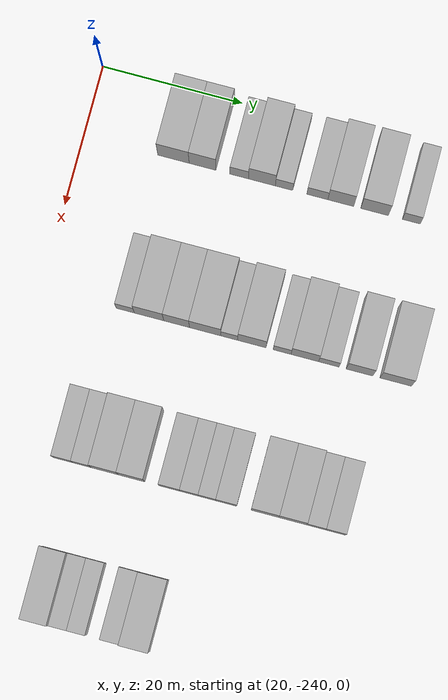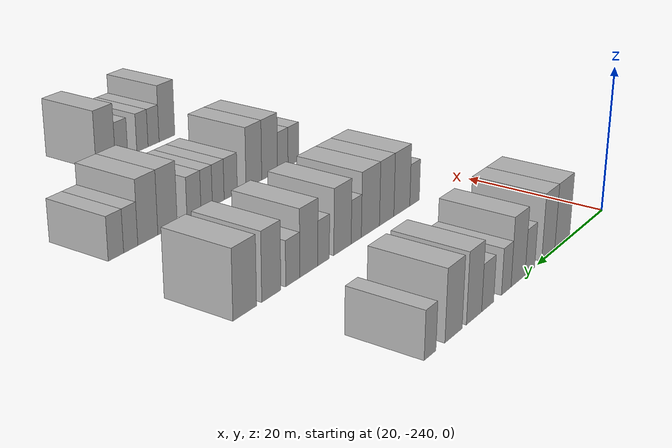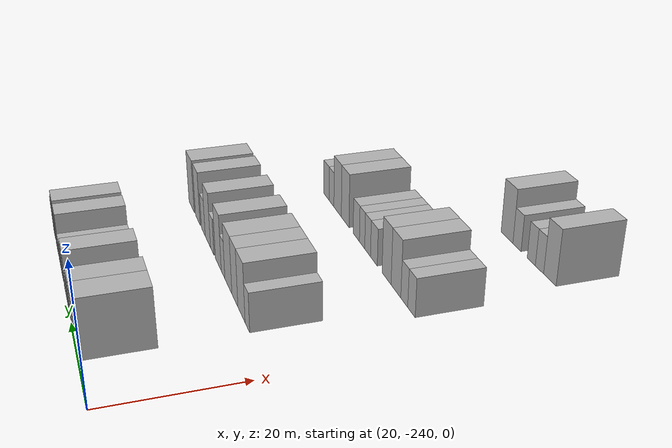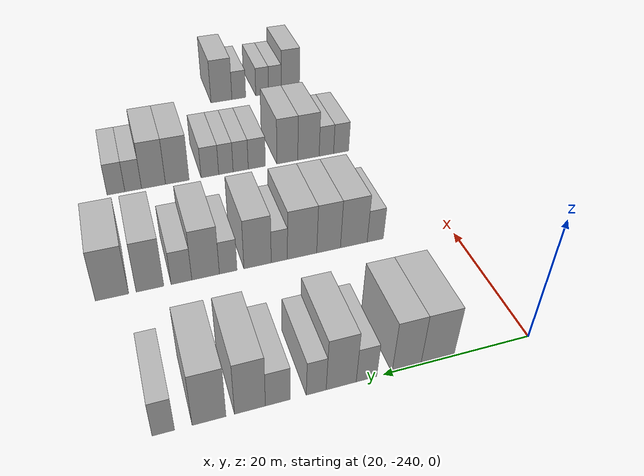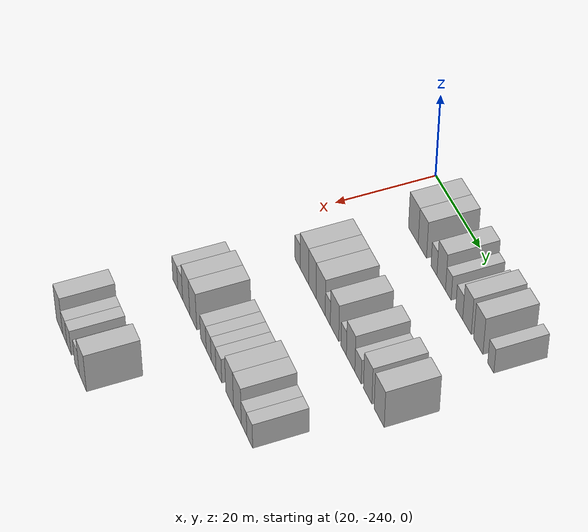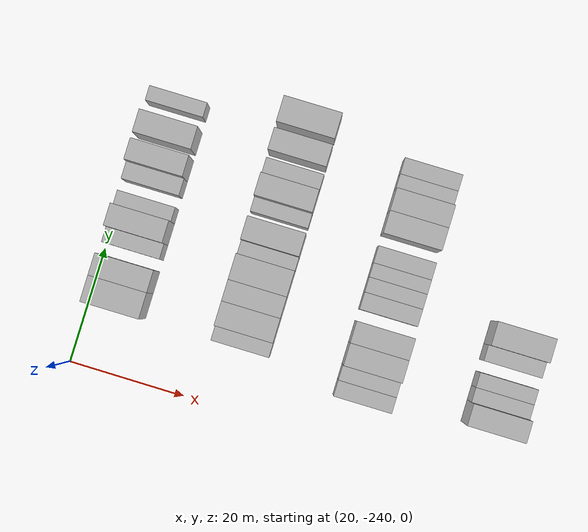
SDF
<sdf version="1.6">
 <world name="default">
  <model name="building_40">
   <static>1</static>
   <pose>25.0000 -227.1683 0 0.000000 0.000000 0.000000</pose>
   <link name="link">
    <pose>0 0 4.50 0 0 0</pose>
    <collision name="collision"><geometry><box><size>10.0000 4.4841 9.0000</size></box></geometry></collision>
    <visual name="visual">
     <cast_shadows>0</cast_shadows>
     <geometry><box><size>10.0000 4.4841 9.0000</size></box></geometry>
     <material>
      <script>
       <uri>model://HANNAS_wall/materials/scripts</uri>
       <uri>model://HANNAS_wall/materials/textures</uri>
       <name>vrc/HANNAS_wall</name>
      </script>
     </material>
    </visual>
   </link>
  </model>
  <model name="building_41">
   <static>1</static>
   <pose>25.0000 -223.0183 0 0.000000 0.000000 0.000000</pose>
   <link name="link">
    <pose>0 0 4.50 0 0 0</pose>
    <collision name="collision"><geometry><box><size>10.0000 3.8158 9.0000</size></box></geometry></collision>
    <visual name="visual">
     <cast_shadows>0</cast_shadows>
     <geometry><box><size>10.0000 3.8158 9.0000</size></box></geometry>
     <material>
      <script>
       <uri>model://HANNAS_wall/materials/scripts</uri>
       <uri>model://HANNAS_wall/materials/textures</uri>
       <name>vrc/HANNAS_wall</name>
      </script>
     </material>
    </visual>
   </link>
  </model>
  <model name="building_42">
   <static>1</static>
   <pose>25.0000 -217.7820 0 0.000000 0.000000 0.000000</pose>
   <link name="link">
    <pose>0 0 3.00 0 0 0</pose>
    <collision name="collision"><geometry><box><size>10.0000 2.6568 6.0000</size></box></geometry></collision>
    <visual name="visual">
     <cast_shadows>0</cast_shadows>
     <geometry><box><size>10.0000 2.6568 6.0000</size></box></geometry>
     <material>
      <script>
       <uri>model://HANNAS_wall/materials/scripts</uri>
       <uri>model://HANNAS_wall/materials/textures</uri>
       <name>vrc/HANNAS_wall</name>
      </script>
     </material>
    </visual>
   </link>
  </model>
  <model name="building_43">
   <static>1</static>
   <pose>25.0000 -214.5450 0 0.000000 0.000000 0.000000</pose>
   <link name="link">
    <pose>0 0 4.50 0 0 0</pose>
    <collision name="collision"><geometry><box><size>10.0000 3.8174 9.0000</size></box></geometry></collision>
    <visual name="visual">
     <cast_shadows>0</cast_shadows>
     <geometry><box><size>10.0000 3.8174 9.0000</size></box></geometry>
     <material>
      <script>
       <uri>model://HANNAS_wall/materials/scripts</uri>
       <uri>model://HANNAS_wall/materials/textures</uri>
       <name>vrc/HANNAS_wall</name>
      </script>
     </material>
    </visual>
   </link>
  </model>
  <model name="building_44">
   <static>1</static>
   <pose>25.0000 -211.3935 0 0.000000 0.000000 0.000000</pose>
   <link name="link">
    <pose>0 0 3.00 0 0 0</pose>
    <collision name="collision"><geometry><box><size>10.0000 2.4856 6.0000</size></box></geometry></collision>
    <visual name="visual">
     <cast_shadows>0</cast_shadows>
     <geometry><box><size>10.0000 2.4856 6.0000</size></box></geometry>
     <material>
      <script>
       <uri>model://HANNAS_wall/materials/scripts</uri>
       <uri>model://HANNAS_wall/materials/textures</uri>
       <name>vrc/HANNAS_wall</name>
      </script>
     </material>
    </visual>
   </link>
  </model>
  <model name="building_45">
   <static>1</static>
   <pose>25.0000 -206.6553 0 0.000000 0.000000 0.000000</pose>
   <link name="link">
    <pose>0 0 3.00 0 0 0</pose>
    <collision name="collision"><geometry><box><size>10.0000 2.9908 6.0000</size></box></geometry></collision>
    <visual name="visual">
     <cast_shadows>0</cast_shadows>
     <geometry><box><size>10.0000 2.9908 6.0000</size></box></geometry>
     <material>
      <script>
       <uri>model://HANNAS_wall/materials/scripts</uri>
       <uri>model://HANNAS_wall/materials/textures</uri>
       <name>vrc/HANNAS_wall</name>
      </script>
     </material>
    </visual>
   </link>
  </model>
  <model name="building_46">
   <static>1</static>
   <pose>25.0000 -203.3192 0 0.000000 0.000000 0.000000</pose>
   <link name="link">
    <pose>0 0 4.50 0 0 0</pose>
    <collision name="collision"><geometry><box><size>10.0000 3.6814 9.0000</size></box></geometry></collision>
    <visual name="visual">
     <cast_shadows>0</cast_shadows>
     <geometry><box><size>10.0000 3.6814 9.0000</size></box></geometry>
     <material>
      <script>
       <uri>model://HANNAS_wall/materials/scripts</uri>
       <uri>model://HANNAS_wall/materials/textures</uri>
       <name>vrc/HANNAS_wall</name>
      </script>
     </material>
    </visual>
   </link>
  </model>
  <model name="building_47">
   <static>1</static>
   <pose>25.0000 -198.5121 0 0.000000 0.000000 0.000000</pose>
   <link name="link">
    <pose>0 0 4.50 0 0 0</pose>
    <collision name="collision"><geometry><box><size>10.0000 3.9329 9.0000</size></box></geometry></collision>
    <visual name="visual">
     <cast_shadows>0</cast_shadows>
     <geometry><box><size>10.0000 3.9329 9.0000</size></box></geometry>
     <material>
      <script>
       <uri>model://HANNAS_wall/materials/scripts</uri>
       <uri>model://HANNAS_wall/materials/textures</uri>
       <name>vrc/HANNAS_wall</name>
      </script>
     </material>
    </visual>
   </link>
  </model>
  <model name="building_48">
   <static>1</static>
   <pose>25.0000 -193.2769 0 0.000000 0.000000 0.000000</pose>
   <link name="link">
    <pose>0 0 3.00 0 0 0</pose>
    <collision name="collision"><geometry><box><size>10.0000 2.5376 6.0000</size></box></geometry></collision>
    <visual name="visual">
     <cast_shadows>0</cast_shadows>
     <geometry><box><size>10.0000 2.5376 6.0000</size></box></geometry>
     <material>
      <script>
       <uri>model://HANNAS_wall/materials/scripts</uri>
       <uri>model://HANNAS_wall/materials/textures</uri>
       <name>vrc/HANNAS_wall</name>
      </script>
     </material>
    </visual>
   </link>
  </model>
  <model name="building_219">
   <static>1</static>
   <pose>47.0000 -228.1112 0 0.000000 0.000000 0.000000</pose>
   <link name="link">
    <pose>0 0 3.00 0 0 0</pose>
    <collision name="collision"><geometry><box><size>10.0000 2.5656 6.0000</size></box></geometry></collision>
    <visual name="visual">
     <cast_shadows>0</cast_shadows>
     <geometry><box><size>10.0000 2.5656 6.0000</size></box></geometry>
     <material>
      <script>
       <uri>model://HANNAS_wall/materials/scripts</uri>
       <uri>model://HANNAS_wall/materials/textures</uri>
       <name>vrc/HANNAS_wall</name>
      </script>
     </material>
    </visual>
   </link>
  </model>
  <model name="building_220">
   <static>1</static>
   <pose>47.0000 -224.7351 0 0.000000 0.000000 0.000000</pose>
   <link name="link">
    <pose>0 0 4.50 0 0 0</pose>
    <collision name="collision"><geometry><box><size>10.0000 4.1868 9.0000</size></box></geometry></collision>
    <visual name="visual">
     <cast_shadows>0</cast_shadows>
     <geometry><box><size>10.0000 4.1868 9.0000</size></box></geometry>
     <material>
      <script>
       <uri>model://HANNAS_wall/materials/scripts</uri>
       <uri>model://HANNAS_wall/materials/textures</uri>
       <name>vrc/HANNAS_wall</name>
      </script>
     </material>
    </visual>
   </link>
  </model>
  <model name="building_221">
   <static>1</static>
   <pose>47.0000 -220.8166 0 0.000000 0.000000 0.000000</pose>
   <link name="link">
    <pose>0 0 4.50 0 0 0</pose>
    <collision name="collision"><geometry><box><size>10.0000 3.6501 9.0000</size></box></geometry></collision>
    <visual name="visual">
     <cast_shadows>0</cast_shadows>
     <geometry><box><size>10.0000 3.6501 9.0000</size></box></geometry>
     <material>
      <script>
       <uri>model://HANNAS_wall/materials/scripts</uri>
       <uri>model://HANNAS_wall/materials/textures</uri>
       <name>vrc/HANNAS_wall</name>
      </script>
     </material>
    </visual>
   </link>
  </model>
  <model name="building_222">
   <static>1</static>
   <pose>47.0000 -216.7749 0 0.000000 0.000000 0.000000</pose>
   <link name="link">
    <pose>0 0 4.50 0 0 0</pose>
    <collision name="collision"><geometry><box><size>10.0000 4.4333 9.0000</size></box></geometry></collision>
    <visual name="visual">
     <cast_shadows>0</cast_shadows>
     <geometry><box><size>10.0000 4.4333 9.0000</size></box></geometry>
     <material>
      <script>
       <uri>model://HANNAS_wall/materials/scripts</uri>
       <uri>model://HANNAS_wall/materials/textures</uri>
       <name>vrc/HANNAS_wall</name>
      </script>
     </material>
    </visual>
   </link>
  </model>
  <model name="building_223">
   <static>1</static>
   <pose>47.0000 -213.3539 0 0.000000 0.000000 0.000000</pose>
   <link name="link">
    <pose>0 0 3.00 0 0 0</pose>
    <collision name="collision"><geometry><box><size>10.0000 2.4087 6.0000</size></box></geometry></collision>
    <visual name="visual">
     <cast_shadows>0</cast_shadows>
     <geometry><box><size>10.0000 2.4087 6.0000</size></box></geometry>
     <material>
      <script>
       <uri>model://HANNAS_wall/materials/scripts</uri>
       <uri>model://HANNAS_wall/materials/textures</uri>
       <name>vrc/HANNAS_wall</name>
      </script>
     </material>
    </visual>
   </link>
  </model>
  <model name="building_224">
   <static>1</static>
   <pose>47.0000 -210.1495 0 0.000000 0.000000 0.000000</pose>
   <link name="link">
    <pose>0 0 4.50 0 0 0</pose>
    <collision name="collision"><geometry><box><size>10.0000 4.0001 9.0000</size></box></geometry></collision>
    <visual name="visual">
     <cast_shadows>0</cast_shadows>
     <geometry><box><size>10.0000 4.0001 9.0000</size></box></geometry>
     <material>
      <script>
       <uri>model://HANNAS_wall/materials/scripts</uri>
       <uri>model://HANNAS_wall/materials/textures</uri>
       <name>vrc/HANNAS_wall</name>
      </script>
     </material>
    </visual>
   </link>
  </model>
  <model name="building_225">
   <static>1</static>
   <pose>47.0000 -205.8827 0 0.000000 0.000000 0.000000</pose>
   <link name="link">
    <pose>0 0 3.00 0 0 0</pose>
    <collision name="collision"><geometry><box><size>10.0000 2.5335 6.0000</size></box></geometry></collision>
    <visual name="visual">
     <cast_shadows>0</cast_shadows>
     <geometry><box><size>10.0000 2.5335 6.0000</size></box></geometry>
     <material>
      <script>
       <uri>model://HANNAS_wall/materials/scripts</uri>
       <uri>model://HANNAS_wall/materials/textures</uri>
       <name>vrc/HANNAS_wall</name>
      </script>
     </material>
    </visual>
   </link>
  </model>
  <model name="building_226">
   <static>1</static>
   <pose>47.0000 -202.6652 0 0.000000 0.000000 0.000000</pose>
   <link name="link">
    <pose>0 0 4.50 0 0 0</pose>
    <collision name="collision"><geometry><box><size>10.0000 3.9015 9.0000</size></box></geometry></collision>
    <visual name="visual">
     <cast_shadows>0</cast_shadows>
     <geometry><box><size>10.0000 3.9015 9.0000</size></box></geometry>
     <material>
      <script>
       <uri>model://HANNAS_wall/materials/scripts</uri>
       <uri>model://HANNAS_wall/materials/textures</uri>
       <name>vrc/HANNAS_wall</name>
      </script>
     </material>
    </visual>
   </link>
  </model>
  <model name="building_227">
   <static>1</static>
   <pose>47.0000 -199.2662 0 0.000000 0.000000 0.000000</pose>
   <link name="link">
    <pose>0 0 3.00 0 0 0</pose>
    <collision name="collision"><geometry><box><size>10.0000 2.8965 6.0000</size></box></geometry></collision>
    <visual name="visual">
     <cast_shadows>0</cast_shadows>
     <geometry><box><size>10.0000 2.8965 6.0000</size></box></geometry>
     <material>
      <script>
       <uri>model://HANNAS_wall/materials/scripts</uri>
       <uri>model://HANNAS_wall/materials/textures</uri>
       <name>vrc/HANNAS_wall</name>
      </script>
     </material>
    </visual>
   </link>
  </model>
  <model name="building_228">
   <static>1</static>
   <pose>47.0000 -194.9281 0 0.000000 0.000000 0.000000</pose>
   <link name="link">
    <pose>0 0 4.50 0 0 0</pose>
    <collision name="collision"><geometry><box><size>10.0000 3.7796 9.0000</size></box></geometry></collision>
    <visual name="visual">
     <cast_shadows>0</cast_shadows>
     <geometry><box><size>10.0000 3.7796 9.0000</size></box></geometry>
     <material>
      <script>
       <uri>model://HANNAS_wall/materials/scripts</uri>
       <uri>model://HANNAS_wall/materials/textures</uri>
       <name>vrc/HANNAS_wall</name>
      </script>
     </material>
    </visual>
   </link>
  </model>
  <model name="building_229">
   <static>1</static>
   <pose>47.0000 -189.8115 0 0.000000 0.000000 0.000000</pose>
   <link name="link">
    <pose>0 0 4.50 0 0 0</pose>
    <collision name="collision"><geometry><box><size>10.0000 4.4535 9.0000</size></box></geometry></collision>
    <visual name="visual">
     <cast_shadows>0</cast_shadows>
     <geometry><box><size>10.0000 4.4535 9.0000</size></box></geometry>
     <material>
      <script>
       <uri>model://HANNAS_wall/materials/scripts</uri>
       <uri>model://HANNAS_wall/materials/textures</uri>
       <name>vrc/HANNAS_wall</name>
      </script>
     </material>
    </visual>
   </link>
  </model>
  <model name="building_403">
   <static>1</static>
   <pose>69.0000 -230.9611 0 0.000000 0.000000 0.000000</pose>
   <link name="link">
    <pose>0 0 3.00 0 0 0</pose>
    <collision name="collision"><geometry><box><size>10.0000 2.7530 6.0000</size></box></geometry></collision>
    <visual name="visual">
     <cast_shadows>0</cast_shadows>
     <geometry><box><size>10.0000 2.7530 6.0000</size></box></geometry>
     <material>
      <script>
       <uri>model://HANNAS_wall/materials/scripts</uri>
       <uri>model://HANNAS_wall/materials/textures</uri>
       <name>vrc/HANNAS_wall</name>
      </script>
     </material>
    </visual>
   </link>
  </model>
  <model name="building_404">
   <static>1</static>
   <pose>69.0000 -228.2709 0 0.000000 0.000000 0.000000</pose>
   <link name="link">
    <pose>0 0 3.00 0 0 0</pose>
    <collision name="collision"><geometry><box><size>10.0000 2.6274 6.0000</size></box></geometry></collision>
    <visual name="visual">
     <cast_shadows>0</cast_shadows>
     <geometry><box><size>10.0000 2.6274 6.0000</size></box></geometry>
     <material>
      <script>
       <uri>model://HANNAS_wall/materials/scripts</uri>
       <uri>model://HANNAS_wall/materials/textures</uri>
       <name>vrc/HANNAS_wall</name>
      </script>
     </material>
    </visual>
   </link>
  </model>
  <model name="building_405">
   <static>1</static>
   <pose>69.0000 -225.0390 0 0.000000 0.000000 0.000000</pose>
   <link name="link">
    <pose>0 0 4.50 0 0 0</pose>
    <collision name="collision"><geometry><box><size>10.0000 3.8362 9.0000</size></box></geometry></collision>
    <visual name="visual">
     <cast_shadows>0</cast_shadows>
     <geometry><box><size>10.0000 3.8362 9.0000</size></box></geometry>
     <material>
      <script>
       <uri>model://HANNAS_wall/materials/scripts</uri>
       <uri>model://HANNAS_wall/materials/textures</uri>
       <name>vrc/HANNAS_wall</name>
      </script>
     </material>
    </visual>
   </link>
  </model>
  <model name="building_406">
   <static>1</static>
   <pose>69.0000 -221.2680 0 0.000000 0.000000 0.000000</pose>
   <link name="link">
    <pose>0 0 4.50 0 0 0</pose>
    <collision name="collision"><geometry><box><size>10.0000 3.7058 9.0000</size></box></geometry></collision>
    <visual name="visual">
     <cast_shadows>0</cast_shadows>
     <geometry><box><size>10.0000 3.7058 9.0000</size></box></geometry>
     <material>
      <script>
       <uri>model://HANNAS_wall/materials/scripts</uri>
       <uri>model://HANNAS_wall/materials/textures</uri>
       <name>vrc/HANNAS_wall</name>
      </script>
     </material>
    </visual>
   </link>
  </model>
  <model name="building_407">
   <static>1</static>
   <pose>69.0000 -215.9321 0 0.000000 0.000000 0.000000</pose>
   <link name="link">
    <pose>0 0 3.00 0 0 0</pose>
    <collision name="collision"><geometry><box><size>10.0000 2.9661 6.0000</size></box></geometry></collision>
    <visual name="visual">
     <cast_shadows>0</cast_shadows>
     <geometry><box><size>10.0000 2.9661 6.0000</size></box></geometry>
     <material>
      <script>
       <uri>model://HANNAS_wall/materials/scripts</uri>
       <uri>model://HANNAS_wall/materials/textures</uri>
       <name>vrc/HANNAS_wall</name>
      </script>
     </material>
    </visual>
   </link>
  </model>
  <model name="building_408">
   <static>1</static>
   <pose>69.0000 -213.1549 0 0.000000 0.000000 0.000000</pose>
   <link name="link">
    <pose>0 0 3.00 0 0 0</pose>
    <collision name="collision"><geometry><box><size>10.0000 2.5882 6.0000</size></box></geometry></collision>
    <visual name="visual">
     <cast_shadows>0</cast_shadows>
     <geometry><box><size>10.0000 2.5882 6.0000</size></box></geometry>
     <material>
      <script>
       <uri>model://HANNAS_wall/materials/scripts</uri>
       <uri>model://HANNAS_wall/materials/textures</uri>
       <name>vrc/HANNAS_wall</name>
      </script>
     </material>
    </visual>
   </link>
  </model>
  <model name="building_409">
   <static>1</static>
   <pose>69.0000 -210.6361 0 0.000000 0.000000 0.000000</pose>
   <link name="link">
    <pose>0 0 3.00 0 0 0</pose>
    <collision name="collision"><geometry><box><size>10.0000 2.4495 6.0000</size></box></geometry></collision>
    <visual name="visual">
     <cast_shadows>0</cast_shadows>
     <geometry><box><size>10.0000 2.4495 6.0000</size></box></geometry>
     <material>
      <script>
       <uri>model://HANNAS_wall/materials/scripts</uri>
       <uri>model://HANNAS_wall/materials/textures</uri>
       <name>vrc/HANNAS_wall</name>
      </script>
     </material>
    </visual>
   </link>
  </model>
  <model name="building_410">
   <static>1</static>
   <pose>69.0000 -207.9348 0 0.000000 0.000000 0.000000</pose>
   <link name="link">
    <pose>0 0 3.00 0 0 0</pose>
    <collision name="collision"><geometry><box><size>10.0000 2.9533 6.0000</size></box></geometry></collision>
    <visual name="visual">
     <cast_shadows>0</cast_shadows>
     <geometry><box><size>10.0000 2.9533 6.0000</size></box></geometry>
     <material>
      <script>
       <uri>model://HANNAS_wall/materials/scripts</uri>
       <uri>model://HANNAS_wall/materials/textures</uri>
       <name>vrc/HANNAS_wall</name>
      </script>
     </material>
    </visual>
   </link>
  </model>
  <model name="building_411">
   <static>1</static>
   <pose>69.0000 -202.5224 0 0.000000 0.000000 0.000000</pose>
   <link name="link">
    <pose>0 0 4.50 0 0 0</pose>
    <collision name="collision"><geometry><box><size>10.0000 3.8714 9.0000</size></box></geometry></collision>
    <visual name="visual">
     <cast_shadows>0</cast_shadows>
     <geometry><box><size>10.0000 3.8714 9.0000</size></box></geometry>
     <material>
      <script>
       <uri>model://HANNAS_wall/materials/scripts</uri>
       <uri>model://HANNAS_wall/materials/textures</uri>
       <name>vrc/HANNAS_wall</name>
      </script>
     </material>
    </visual>
   </link>
  </model>
  <model name="building_412">
   <static>1</static>
   <pose>69.0000 -198.6490 0 0.000000 0.000000 0.000000</pose>
   <link name="link">
    <pose>0 0 4.50 0 0 0</pose>
    <collision name="collision"><geometry><box><size>10.0000 3.8755 9.0000</size></box></geometry></collision>
    <visual name="visual">
     <cast_shadows>0</cast_shadows>
     <geometry><box><size>10.0000 3.8755 9.0000</size></box></geometry>
     <material>
      <script>
       <uri>model://HANNAS_wall/materials/scripts</uri>
       <uri>model://HANNAS_wall/materials/textures</uri>
       <name>vrc/HANNAS_wall</name>
      </script>
     </material>
    </visual>
   </link>
  </model>
  <model name="building_413">
   <static>1</static>
   <pose>69.0000 -195.3804 0 0.000000 0.000000 0.000000</pose>
   <link name="link">
    <pose>0 0 3.00 0 0 0</pose>
    <collision name="collision"><geometry><box><size>10.0000 2.6617 6.0000</size></box></geometry></collision>
    <visual name="visual">
     <cast_shadows>0</cast_shadows>
     <geometry><box><size>10.0000 2.6617 6.0000</size></box></geometry>
     <material>
      <script>
       <uri>model://HANNAS_wall/materials/scripts</uri>
       <uri>model://HANNAS_wall/materials/textures</uri>
       <name>vrc/HANNAS_wall</name>
      </script>
     </material>
    </visual>
   </link>
  </model>
  <model name="building_414">
   <static>1</static>
   <pose>69.0000 -192.6377 0 0.000000 0.000000 0.000000</pose>
   <link name="link">
    <pose>0 0 3.00 0 0 0</pose>
    <collision name="collision"><geometry><box><size>10.0000 2.8237 6.0000</size></box></geometry></collision>
    <visual name="visual">
     <cast_shadows>0</cast_shadows>
     <geometry><box><size>10.0000 2.8237 6.0000</size></box></geometry>
     <material>
      <script>
       <uri>model://HANNAS_wall/materials/scripts</uri>
       <uri>model://HANNAS_wall/materials/textures</uri>
       <name>vrc/HANNAS_wall</name>
      </script>
     </material>
    </visual>
   </link>
  </model>
  <model name="building_586">
   <static>1</static>
   <pose>91.0000 -228.5989 0 0.000000 0.000000 0.000000</pose>
   <link name="link">
    <pose>0 0 4.50 0 0 0</pose>
    <collision name="collision"><geometry><box><size>10.0000 3.7334 9.0000</size></box></geometry></collision>
    <visual name="visual">
     <cast_shadows>0</cast_shadows>
     <geometry><box><size>10.0000 3.7334 9.0000</size></box></geometry>
     <material>
      <script>
       <uri>model://HANNAS_wall/materials/scripts</uri>
       <uri>model://HANNAS_wall/materials/textures</uri>
       <name>vrc/HANNAS_wall</name>
      </script>
     </material>
    </visual>
   </link>
  </model>
  <model name="building_587">
   <static>1</static>
   <pose>91.0000 -225.4562 0 0.000000 0.000000 0.000000</pose>
   <link name="link">
    <pose>0 0 3.00 0 0 0</pose>
    <collision name="collision"><geometry><box><size>10.0000 2.5520 6.0000</size></box></geometry></collision>
    <visual name="visual">
     <cast_shadows>0</cast_shadows>
     <geometry><box><size>10.0000 2.5520 6.0000</size></box></geometry>
     <material>
      <script>
       <uri>model://HANNAS_wall/materials/scripts</uri>
       <uri>model://HANNAS_wall/materials/textures</uri>
       <name>vrc/HANNAS_wall</name>
      </script>
     </material>
    </visual>
   </link>
  </model>
  <model name="building_588">
   <static>1</static>
   <pose>91.0000 -222.8981 0 0.000000 0.000000 0.000000</pose>
   <link name="link">
    <pose>0 0 3.00 0 0 0</pose>
    <collision name="collision"><geometry><box><size>10.0000 2.5643 6.0000</size></box></geometry></collision>
    <visual name="visual">
     <cast_shadows>0</cast_shadows>
     <geometry><box><size>10.0000 2.5643 6.0000</size></box></geometry>
     <material>
      <script>
       <uri>model://HANNAS_wall/materials/scripts</uri>
       <uri>model://HANNAS_wall/materials/textures</uri>
       <name>vrc/HANNAS_wall</name>
      </script>
     </material>
    </visual>
   </link>
  </model>
  <model name="building_589">
   <static>1</static>
   <pose>91.0000 -218.2520 0 0.000000 0.000000 0.000000</pose>
   <link name="link">
    <pose>0 0 3.00 0 0 0</pose>
    <collision name="collision"><geometry><box><size>10.0000 2.7278 6.0000</size></box></geometry></collision>
    <visual name="visual">
     <cast_shadows>0</cast_shadows>
     <geometry><box><size>10.0000 2.7278 6.0000</size></box></geometry>
     <material>
      <script>
       <uri>model://HANNAS_wall/materials/scripts</uri>
       <uri>model://HANNAS_wall/materials/textures</uri>
       <name>vrc/HANNAS_wall</name>
      </script>
     </material>
    </visual>
   </link>
  </model>
  <model name="building_590">
   <static>1</static>
   <pose>91.0000 -214.8466 0 0.000000 0.000000 0.000000</pose>
   <link name="link">
    <pose>0 0 4.50 0 0 0</pose>
    <collision name="collision"><geometry><box><size>10.0000 4.0830 9.0000</size></box></geometry></collision>
    <visual name="visual">
     <cast_shadows>0</cast_shadows>
     <geometry><box><size>10.0000 4.0830 9.0000</size></box></geometry>
     <material>
      <script>
       <uri>model://HANNAS_wall/materials/scripts</uri>
       <uri>model://HANNAS_wall/materials/textures</uri>
       <name>vrc/HANNAS_wall</name>
      </script>
     </material>
    </visual>
   </link>
  </model>
 </world>
</sdf>
